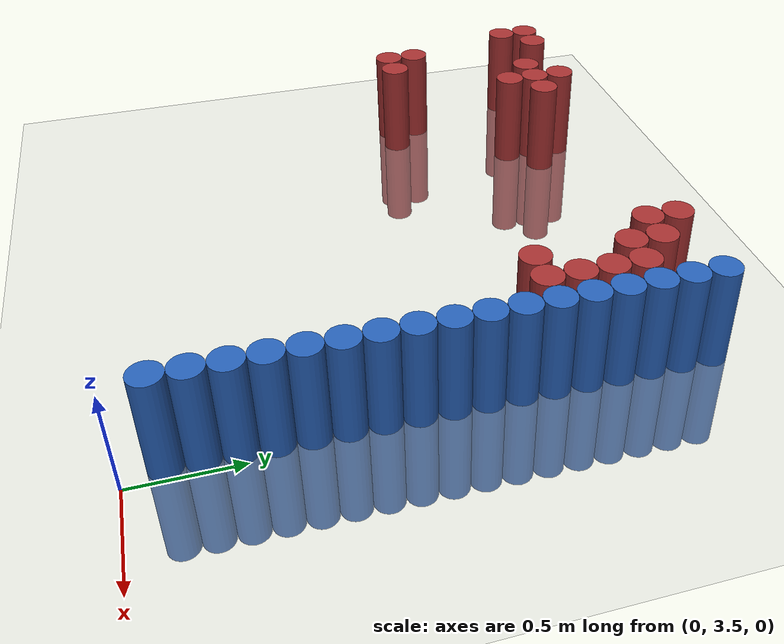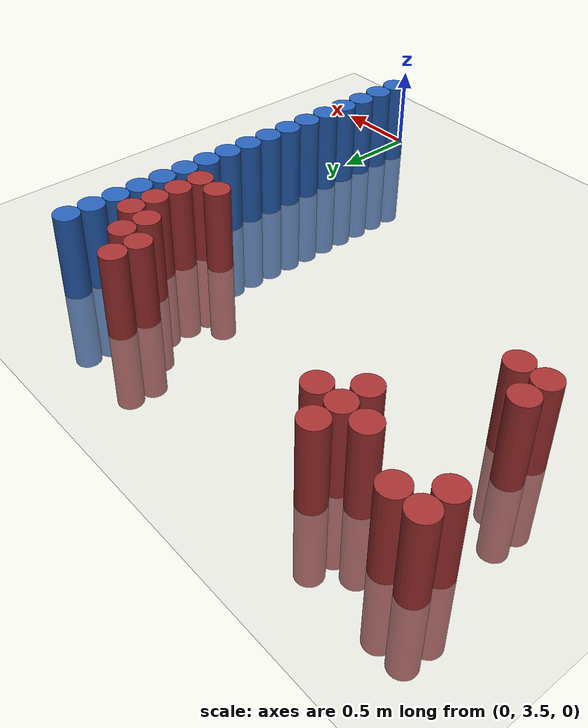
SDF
<sdf version="1.6">
 <world name="default">
  <model name="ground_plane">
   <static>1</static>
   <link name="link">
    <collision name="collision">
     <geometry><plane><normal>0 0 1</normal><size>100 100</size></plane></geometry>
     <surface><friction><ode><mu>100</mu><mu2>50</mu2></ode></friction></surface>
    </collision>
    <visual name="visual">
     <cast_shadows>0</cast_shadows>
     <geometry><plane><normal>0 0 1</normal><size>100 100</size></plane></geometry>
     <material>
      <script><uri>file://media/materials/scripts/gazebo.material</uri><name>Gazebo/Grey</name></script>
     </material>
    </visual>
   </link>
  </model>
  <model name="unit_cylinder_76">
   <static>1</static>
   <pose>-0.075000 3.675000 0.000000 0.000000 0.000000 0.000000</pose>
   <link name="link">
    <inertial>
     <mass>1</mass>
     <inertia><ixx>0.145833</ixx><ixy>0</ixy><ixz>0</ixz><iyy>0.145833</iyy><iyz>0</iyz><izz>0.125</izz></inertia>
    </inertial>
    <collision name="collision">
     <geometry><cylinder><radius>0.075000</radius><length>1</length></cylinder></geometry>
    </collision>
    <visual name="visual">
     <geometry><cylinder><radius>0.075000</radius><length>1</length></cylinder></geometry>
     <material>
      <ambient>0.152000 0.379000 0.720000 1</ambient>
      <diffuse>0.152000 0.379000 0.720000 1</diffuse>
     </material>
     <material>
      <script><name>Gazebo/Grey</name><uri>file://media/materials/scripts/gazebo.material</uri></script>
     </material>
    </visual>
    <sensor name="sensor_contact" type="contact"><contact><collision>collision</collision></contact></sensor>
   </link>
   <plugin filename="gz-sim-touchplugin-system" name="gz::sim::systems::TouchPlugin">
    <target>robot</target>
    <namespace>robot</namespace>
    <time>0.001</time>
    <enabled>true</enabled>
   </plugin>
  </model>
  <model name="unit_cylinder_78">
   <static>1</static>
   <pose>-0.075000 3.825000 0.000000 0.000000 0.000000 0.000000</pose>
   <link name="link">
    <inertial>
     <mass>1</mass>
     <inertia><ixx>0.145833</ixx><ixy>0</ixy><ixz>0</ixz><iyy>0.145833</iyy><iyz>0</iyz><izz>0.125</izz></inertia>
    </inertial>
    <collision name="collision">
     <geometry><cylinder><radius>0.075000</radius><length>1</length></cylinder></geometry>
    </collision>
    <visual name="visual">
     <geometry><cylinder><radius>0.075000</radius><length>1</length></cylinder></geometry>
     <material>
      <ambient>0.152000 0.379000 0.720000 1</ambient>
      <diffuse>0.152000 0.379000 0.720000 1</diffuse>
     </material>
     <material>
      <script><name>Gazebo/Grey</name><uri>file://media/materials/scripts/gazebo.material</uri></script>
     </material>
    </visual>
    <sensor name="sensor_contact" type="contact"><contact><collision>collision</collision></contact></sensor>
   </link>
   <plugin filename="gz-sim-touchplugin-system" name="gz::sim::systems::TouchPlugin">
    <target>robot</target>
    <namespace>robot</namespace>
    <time>0.001</time>
    <enabled>true</enabled>
   </plugin>
  </model>
  <model name="unit_cylinder_80">
   <static>1</static>
   <pose>-0.075000 3.975000 0.000000 0.000000 0.000000 0.000000</pose>
   <link name="link">
    <inertial>
     <mass>1</mass>
     <inertia><ixx>0.145833</ixx><ixy>0</ixy><ixz>0</ixz><iyy>0.145833</iyy><iyz>0</iyz><izz>0.125</izz></inertia>
    </inertial>
    <collision name="collision">
     <geometry><cylinder><radius>0.075000</radius><length>1</length></cylinder></geometry>
    </collision>
    <visual name="visual">
     <geometry><cylinder><radius>0.075000</radius><length>1</length></cylinder></geometry>
     <material>
      <ambient>0.152000 0.379000 0.720000 1</ambient>
      <diffuse>0.152000 0.379000 0.720000 1</diffuse>
     </material>
     <material>
      <script><name>Gazebo/Grey</name><uri>file://media/materials/scripts/gazebo.material</uri></script>
     </material>
    </visual>
    <sensor name="sensor_contact" type="contact"><contact><collision>collision</collision></contact></sensor>
   </link>
   <plugin filename="gz-sim-touchplugin-system" name="gz::sim::systems::TouchPlugin">
    <target>robot</target>
    <namespace>robot</namespace>
    <time>0.001</time>
    <enabled>true</enabled>
   </plugin>
  </model>
  <model name="unit_cylinder_82">
   <static>1</static>
   <pose>-0.075000 4.125000 0.000000 0.000000 0.000000 0.000000</pose>
   <link name="link">
    <inertial>
     <mass>1</mass>
     <inertia><ixx>0.145833</ixx><ixy>0</ixy><ixz>0</ixz><iyy>0.145833</iyy><iyz>0</iyz><izz>0.125</izz></inertia>
    </inertial>
    <collision name="collision">
     <geometry><cylinder><radius>0.075000</radius><length>1</length></cylinder></geometry>
    </collision>
    <visual name="visual">
     <geometry><cylinder><radius>0.075000</radius><length>1</length></cylinder></geometry>
     <material>
      <ambient>0.152000 0.379000 0.720000 1</ambient>
      <diffuse>0.152000 0.379000 0.720000 1</diffuse>
     </material>
     <material>
      <script><name>Gazebo/Grey</name><uri>file://media/materials/scripts/gazebo.material</uri></script>
     </material>
    </visual>
    <sensor name="sensor_contact" type="contact"><contact><collision>collision</collision></contact></sensor>
   </link>
   <plugin filename="gz-sim-touchplugin-system" name="gz::sim::systems::TouchPlugin">
    <target>robot</target>
    <namespace>robot</namespace>
    <time>0.001</time>
    <enabled>true</enabled>
   </plugin>
  </model>
  <model name="unit_cylinder_84">
   <static>1</static>
   <pose>-0.075000 4.275000 0.000000 0.000000 0.000000 0.000000</pose>
   <link name="link">
    <inertial>
     <mass>1</mass>
     <inertia><ixx>0.145833</ixx><ixy>0</ixy><ixz>0</ixz><iyy>0.145833</iyy><iyz>0</iyz><izz>0.125</izz></inertia>
    </inertial>
    <collision name="collision">
     <geometry><cylinder><radius>0.075000</radius><length>1</length></cylinder></geometry>
    </collision>
    <visual name="visual">
     <geometry><cylinder><radius>0.075000</radius><length>1</length></cylinder></geometry>
     <material>
      <ambient>0.152000 0.379000 0.720000 1</ambient>
      <diffuse>0.152000 0.379000 0.720000 1</diffuse>
     </material>
     <material>
      <script><name>Gazebo/Grey</name><uri>file://media/materials/scripts/gazebo.material</uri></script>
     </material>
    </visual>
    <sensor name="sensor_contact" type="contact"><contact><collision>collision</collision></contact></sensor>
   </link>
   <plugin filename="gz-sim-touchplugin-system" name="gz::sim::systems::TouchPlugin">
    <target>robot</target>
    <namespace>robot</namespace>
    <time>0.001</time>
    <enabled>true</enabled>
   </plugin>
  </model>
  <model name="unit_cylinder_86">
   <static>1</static>
   <pose>-0.075000 4.425000 0.000000 0.000000 0.000000 0.000000</pose>
   <link name="link">
    <inertial>
     <mass>1</mass>
     <inertia><ixx>0.145833</ixx><ixy>0</ixy><ixz>0</ixz><iyy>0.145833</iyy><iyz>0</iyz><izz>0.125</izz></inertia>
    </inertial>
    <collision name="collision">
     <geometry><cylinder><radius>0.075000</radius><length>1</length></cylinder></geometry>
    </collision>
    <visual name="visual">
     <geometry><cylinder><radius>0.075000</radius><length>1</length></cylinder></geometry>
     <material>
      <ambient>0.152000 0.379000 0.720000 1</ambient>
      <diffuse>0.152000 0.379000 0.720000 1</diffuse>
     </material>
     <material>
      <script><name>Gazebo/Grey</name><uri>file://media/materials/scripts/gazebo.material</uri></script>
     </material>
    </visual>
    <sensor name="sensor_contact" type="contact"><contact><collision>collision</collision></contact></sensor>
   </link>
   <plugin filename="gz-sim-touchplugin-system" name="gz::sim::systems::TouchPlugin">
    <target>robot</target>
    <namespace>robot</namespace>
    <time>0.001</time>
    <enabled>true</enabled>
   </plugin>
  </model>
  <model name="unit_cylinder_88">
   <static>1</static>
   <pose>-0.075000 4.575000 0.000000 0.000000 0.000000 0.000000</pose>
   <link name="link">
    <inertial>
     <mass>1</mass>
     <inertia><ixx>0.145833</ixx><ixy>0</ixy><ixz>0</ixz><iyy>0.145833</iyy><iyz>0</iyz><izz>0.125</izz></inertia>
    </inertial>
    <collision name="collision">
     <geometry><cylinder><radius>0.075000</radius><length>1</length></cylinder></geometry>
    </collision>
    <visual name="visual">
     <geometry><cylinder><radius>0.075000</radius><length>1</length></cylinder></geometry>
     <material>
      <ambient>0.152000 0.379000 0.720000 1</ambient>
      <diffuse>0.152000 0.379000 0.720000 1</diffuse>
     </material>
     <material>
      <script><name>Gazebo/Grey</name><uri>file://media/materials/scripts/gazebo.material</uri></script>
     </material>
    </visual>
    <sensor name="sensor_contact" type="contact"><contact><collision>collision</collision></contact></sensor>
   </link>
   <plugin filename="gz-sim-touchplugin-system" name="gz::sim::systems::TouchPlugin">
    <target>robot</target>
    <namespace>robot</namespace>
    <time>0.001</time>
    <enabled>true</enabled>
   </plugin>
  </model>
  <model name="unit_cylinder_90">
   <static>1</static>
   <pose>-0.075000 4.725000 0.000000 0.000000 0.000000 0.000000</pose>
   <link name="link">
    <inertial>
     <mass>1</mass>
     <inertia><ixx>0.145833</ixx><ixy>0</ixy><ixz>0</ixz><iyy>0.145833</iyy><iyz>0</iyz><izz>0.125</izz></inertia>
    </inertial>
    <collision name="collision">
     <geometry><cylinder><radius>0.075000</radius><length>1</length></cylinder></geometry>
    </collision>
    <visual name="visual">
     <geometry><cylinder><radius>0.075000</radius><length>1</length></cylinder></geometry>
     <material>
      <ambient>0.152000 0.379000 0.720000 1</ambient>
      <diffuse>0.152000 0.379000 0.720000 1</diffuse>
     </material>
     <material>
      <script><name>Gazebo/Grey</name><uri>file://media/materials/scripts/gazebo.material</uri></script>
     </material>
    </visual>
    <sensor name="sensor_contact" type="contact"><contact><collision>collision</collision></contact></sensor>
   </link>
   <plugin filename="gz-sim-touchplugin-system" name="gz::sim::systems::TouchPlugin">
    <target>robot</target>
    <namespace>robot</namespace>
    <time>0.001</time>
    <enabled>true</enabled>
   </plugin>
  </model>
  <model name="unit_cylinder_92">
   <static>1</static>
   <pose>-0.075000 4.875000 0.000000 0.000000 0.000000 0.000000</pose>
   <link name="link">
    <inertial>
     <mass>1</mass>
     <inertia><ixx>0.145833</ixx><ixy>0</ixy><ixz>0</ixz><iyy>0.145833</iyy><iyz>0</iyz><izz>0.125</izz></inertia>
    </inertial>
    <collision name="collision">
     <geometry><cylinder><radius>0.075000</radius><length>1</length></cylinder></geometry>
    </collision>
    <visual name="visual">
     <geometry><cylinder><radius>0.075000</radius><length>1</length></cylinder></geometry>
     <material>
      <ambient>0.152000 0.379000 0.720000 1</ambient>
      <diffuse>0.152000 0.379000 0.720000 1</diffuse>
     </material>
     <material>
      <script><name>Gazebo/Grey</name><uri>file://media/materials/scripts/gazebo.material</uri></script>
     </material>
    </visual>
    <sensor name="sensor_contact" type="contact"><contact><collision>collision</collision></contact></sensor>
   </link>
   <plugin filename="gz-sim-touchplugin-system" name="gz::sim::systems::TouchPlugin">
    <target>robot</target>
    <namespace>robot</namespace>
    <time>0.001</time>
    <enabled>true</enabled>
   </plugin>
  </model>
  <model name="unit_cylinder_94">
   <static>1</static>
   <pose>-0.075000 5.025000 0.000000 0.000000 0.000000 0.000000</pose>
   <link name="link">
    <inertial>
     <mass>1</mass>
     <inertia><ixx>0.145833</ixx><ixy>0</ixy><ixz>0</ixz><iyy>0.145833</iyy><iyz>0</iyz><izz>0.125</izz></inertia>
    </inertial>
    <collision name="collision">
     <geometry><cylinder><radius>0.075000</radius><length>1</length></cylinder></geometry>
    </collision>
    <visual name="visual">
     <geometry><cylinder><radius>0.075000</radius><length>1</length></cylinder></geometry>
     <material>
      <ambient>0.152000 0.379000 0.720000 1</ambient>
      <diffuse>0.152000 0.379000 0.720000 1</diffuse>
     </material>
     <material>
      <script><name>Gazebo/Grey</name><uri>file://media/materials/scripts/gazebo.material</uri></script>
     </material>
    </visual>
    <sensor name="sensor_contact" type="contact"><contact><collision>collision</collision></contact></sensor>
   </link>
   <plugin filename="gz-sim-touchplugin-system" name="gz::sim::systems::TouchPlugin">
    <target>robot</target>
    <namespace>robot</namespace>
    <time>0.001</time>
    <enabled>true</enabled>
   </plugin>
  </model>
  <model name="unit_cylinder_207">
   <static>1</static>
   <pose>-2.625000 5.925000 0.000000 0.000000 0.000000 0.000000</pose>
   <link name="link">
    <inertial>
     <mass>1</mass>
     <inertia><ixx>0.145833</ixx><ixy>0</ixy><ixz>0</ixz><iyy>0.145833</iyy><iyz>0</iyz><izz>0.125</izz></inertia>
    </inertial>
    <collision name="collision">
     <geometry><cylinder><radius>0.075000</radius><length>1</length></cylinder></geometry>
    </collision>
    <visual name="visual">
     <geometry><cylinder><radius>0.075000</radius><length>1</length></cylinder></geometry>
     <material>
      <ambient>0.648000 0.192000 0.192000 1</ambient>
      <diffuse>0.648000 0.192000 0.192000 1</diffuse>
     </material>
     <material>
      <script><name>Gazebo/Grey</name><uri>file://media/materials/scripts/gazebo.material</uri></script>
     </material>
    </visual>
    <sensor name="sensor_contact" type="contact"><contact><collision>collision</collision></contact></sensor>
   </link>
   <plugin filename="gz-sim-touchplugin-system" name="gz::sim::systems::TouchPlugin">
    <target>robot</target>
    <namespace>robot</namespace>
    <time>0.001</time>
    <enabled>true</enabled>
   </plugin>
  </model>
  <model name="unit_cylinder_208">
   <static>1</static>
   <pose>-2.625000 6.075000 0.000000 0.000000 0.000000 0.000000</pose>
   <link name="link">
    <inertial>
     <mass>1</mass>
     <inertia><ixx>0.145833</ixx><ixy>0</ixy><ixz>0</ixz><iyy>0.145833</iyy><iyz>0</iyz><izz>0.125</izz></inertia>
    </inertial>
    <collision name="collision">
     <geometry><cylinder><radius>0.075000</radius><length>1</length></cylinder></geometry>
    </collision>
    <visual name="visual">
     <geometry><cylinder><radius>0.075000</radius><length>1</length></cylinder></geometry>
     <material>
      <ambient>0.648000 0.192000 0.192000 1</ambient>
      <diffuse>0.648000 0.192000 0.192000 1</diffuse>
     </material>
     <material>
      <script><name>Gazebo/Grey</name><uri>file://media/materials/scripts/gazebo.material</uri></script>
     </material>
    </visual>
    <sensor name="sensor_contact" type="contact"><contact><collision>collision</collision></contact></sensor>
   </link>
   <plugin filename="gz-sim-touchplugin-system" name="gz::sim::systems::TouchPlugin">
    <target>robot</target>
    <namespace>robot</namespace>
    <time>0.001</time>
    <enabled>true</enabled>
   </plugin>
  </model>
  <model name="unit_cylinder_216">
   <static>1</static>
   <pose>-2.475000 5.175000 0.000000 0.000000 0.000000 0.000000</pose>
   <link name="link">
    <inertial>
     <mass>1</mass>
     <inertia><ixx>0.145833</ixx><ixy>0</ixy><ixz>0</ixz><iyy>0.145833</iyy><iyz>0</iyz><izz>0.125</izz></inertia>
    </inertial>
    <collision name="collision">
     <geometry><cylinder><radius>0.075000</radius><length>1</length></cylinder></geometry>
    </collision>
    <visual name="visual">
     <geometry><cylinder><radius>0.075000</radius><length>1</length></cylinder></geometry>
     <material>
      <ambient>0.648000 0.192000 0.192000 1</ambient>
      <diffuse>0.648000 0.192000 0.192000 1</diffuse>
     </material>
     <material>
      <script><name>Gazebo/Grey</name><uri>file://media/materials/scripts/gazebo.material</uri></script>
     </material>
    </visual>
    <sensor name="sensor_contact" type="contact"><contact><collision>collision</collision></contact></sensor>
   </link>
   <plugin filename="gz-sim-touchplugin-system" name="gz::sim::systems::TouchPlugin">
    <target>robot</target>
    <namespace>robot</namespace>
    <time>0.001</time>
    <enabled>true</enabled>
   </plugin>
  </model>
  <model name="unit_cylinder_217">
   <static>1</static>
   <pose>-2.475000 5.325000 0.000000 0.000000 0.000000 0.000000</pose>
   <link name="link">
    <inertial>
     <mass>1</mass>
     <inertia><ixx>0.145833</ixx><ixy>0</ixy><ixz>0</ixz><iyy>0.145833</iyy><iyz>0</iyz><izz>0.125</izz></inertia>
    </inertial>
    <collision name="collision">
     <geometry><cylinder><radius>0.075000</radius><length>1</length></cylinder></geometry>
    </collision>
    <visual name="visual">
     <geometry><cylinder><radius>0.075000</radius><length>1</length></cylinder></geometry>
     <material>
      <ambient>0.648000 0.192000 0.192000 1</ambient>
      <diffuse>0.648000 0.192000 0.192000 1</diffuse>
     </material>
     <material>
      <script><name>Gazebo/Grey</name><uri>file://media/materials/scripts/gazebo.material</uri></script>
     </material>
    </visual>
    <sensor name="sensor_contact" type="contact"><contact><collision>collision</collision></contact></sensor>
   </link>
   <plugin filename="gz-sim-touchplugin-system" name="gz::sim::systems::TouchPlugin">
    <target>robot</target>
    <namespace>robot</namespace>
    <time>0.001</time>
    <enabled>true</enabled>
   </plugin>
  </model>
  <model name="unit_cylinder_218">
   <static>1</static>
   <pose>-2.475000 6.075000 0.000000 0.000000 0.000000 0.000000</pose>
   <link name="link">
    <inertial>
     <mass>1</mass>
     <inertia><ixx>0.145833</ixx><ixy>0</ixy><ixz>0</ixz><iyy>0.145833</iyy><iyz>0</iyz><izz>0.125</izz></inertia>
    </inertial>
    <collision name="collision">
     <geometry><cylinder><radius>0.075000</radius><length>1</length></cylinder></geometry>
    </collision>
    <visual name="visual">
     <geometry><cylinder><radius>0.075000</radius><length>1</length></cylinder></geometry>
     <material>
      <ambient>0.648000 0.192000 0.192000 1</ambient>
      <diffuse>0.648000 0.192000 0.192000 1</diffuse>
     </material>
     <material>
      <script><name>Gazebo/Grey</name><uri>file://media/materials/scripts/gazebo.material</uri></script>
     </material>
    </visual>
    <sensor name="sensor_contact" type="contact"><contact><collision>collision</collision></contact></sensor>
   </link>
   <plugin filename="gz-sim-touchplugin-system" name="gz::sim::systems::TouchPlugin">
    <target>robot</target>
    <namespace>robot</namespace>
    <time>0.001</time>
    <enabled>true</enabled>
   </plugin>
  </model>
  <model name="unit_cylinder_234">
   <static>1</static>
   <pose>-2.325000 5.175000 0.000000 0.000000 0.000000 0.000000</pose>
   <link name="link">
    <inertial>
     <mass>1</mass>
     <inertia><ixx>0.145833</ixx><ixy>0</ixy><ixz>0</ixz><iyy>0.145833</iyy><iyz>0</iyz><izz>0.125</izz></inertia>
    </inertial>
    <collision name="collision">
     <geometry><cylinder><radius>0.075000</radius><length>1</length></cylinder></geometry>
    </collision>
    <visual name="visual">
     <geometry><cylinder><radius>0.075000</radius><length>1</length></cylinder></geometry>
     <material>
      <ambient>0.648000 0.192000 0.192000 1</ambient>
      <diffuse>0.648000 0.192000 0.192000 1</diffuse>
     </material>
     <material>
      <script><name>Gazebo/Grey</name><uri>file://media/materials/scripts/gazebo.material</uri></script>
     </material>
    </visual>
    <sensor name="sensor_contact" type="contact"><contact><collision>collision</collision></contact></sensor>
   </link>
   <plugin filename="gz-sim-touchplugin-system" name="gz::sim::systems::TouchPlugin">
    <target>robot</target>
    <namespace>robot</namespace>
    <time>0.001</time>
    <enabled>true</enabled>
   </plugin>
  </model>
  <model name="unit_cylinder_241">
   <static>1</static>
   <pose>-2.175000 5.925000 0.000000 0.000000 0.000000 0.000000</pose>
   <link name="link">
    <inertial>
     <mass>1</mass>
     <inertia><ixx>0.145833</ixx><ixy>0</ixy><ixz>0</ixz><iyy>0.145833</iyy><iyz>0</iyz><izz>0.125</izz></inertia>
    </inertial>
    <collision name="collision">
     <geometry><cylinder><radius>0.075000</radius><length>1</length></cylinder></geometry>
    </collision>
    <visual name="visual">
     <geometry><cylinder><radius>0.075000</radius><length>1</length></cylinder></geometry>
     <material>
      <ambient>0.648000 0.192000 0.192000 1</ambient>
      <diffuse>0.648000 0.192000 0.192000 1</diffuse>
     </material>
     <material>
      <script><name>Gazebo/Grey</name><uri>file://media/materials/scripts/gazebo.material</uri></script>
     </material>
    </visual>
    <sensor name="sensor_contact" type="contact"><contact><collision>collision</collision></contact></sensor>
   </link>
   <plugin filename="gz-sim-touchplugin-system" name="gz::sim::systems::TouchPlugin">
    <target>robot</target>
    <namespace>robot</namespace>
    <time>0.001</time>
    <enabled>true</enabled>
   </plugin>
  </model>
  <model name="unit_cylinder_245">
   <static>1</static>
   <pose>-2.025000 5.775000 0.000000 0.000000 0.000000 0.000000</pose>
   <link name="link">
    <inertial>
     <mass>1</mass>
     <inertia><ixx>0.145833</ixx><ixy>0</ixy><ixz>0</ixz><iyy>0.145833</iyy><iyz>0</iyz><izz>0.125</izz></inertia>
    </inertial>
    <collision name="collision">
     <geometry><cylinder><radius>0.075000</radius><length>1</length></cylinder></geometry>
    </collision>
    <visual name="visual">
     <geometry><cylinder><radius>0.075000</radius><length>1</length></cylinder></geometry>
     <material>
      <ambient>0.648000 0.192000 0.192000 1</ambient>
      <diffuse>0.648000 0.192000 0.192000 1</diffuse>
     </material>
     <material>
      <script><name>Gazebo/Grey</name><uri>file://media/materials/scripts/gazebo.material</uri></script>
     </material>
    </visual>
    <sensor name="sensor_contact" type="contact"><contact><collision>collision</collision></contact></sensor>
   </link>
   <plugin filename="gz-sim-touchplugin-system" name="gz::sim::systems::TouchPlugin">
    <target>robot</target>
    <namespace>robot</namespace>
    <time>0.001</time>
    <enabled>true</enabled>
   </plugin>
  </model>
  <model name="unit_cylinder_246">
   <static>1</static>
   <pose>-2.025000 5.925000 0.000000 0.000000 0.000000 0.000000</pose>
   <link name="link">
    <inertial>
     <mass>1</mass>
     <inertia><ixx>0.145833</ixx><ixy>0</ixy><ixz>0</ixz><iyy>0.145833</iyy><iyz>0</iyz><izz>0.125</izz></inertia>
    </inertial>
    <collision name="collision">
     <geometry><cylinder><radius>0.075000</radius><length>1</length></cylinder></geometry>
    </collision>
    <visual name="visual">
     <geometry><cylinder><radius>0.075000</radius><length>1</length></cylinder></geometry>
     <material>
      <ambient>0.648000 0.192000 0.192000 1</ambient>
      <diffuse>0.648000 0.192000 0.192000 1</diffuse>
     </material>
     <material>
      <script><name>Gazebo/Grey</name><uri>file://media/materials/scripts/gazebo.material</uri></script>
     </material>
    </visual>
    <sensor name="sensor_contact" type="contact"><contact><collision>collision</collision></contact></sensor>
   </link>
   <plugin filename="gz-sim-touchplugin-system" name="gz::sim::systems::TouchPlugin">
    <target>robot</target>
    <namespace>robot</namespace>
    <time>0.001</time>
    <enabled>true</enabled>
   </plugin>
  </model>
  <model name="unit_cylinder_247">
   <static>1</static>
   <pose>-2.025000 6.075000 0.000000 0.000000 0.000000 0.000000</pose>
   <link name="link">
    <inertial>
     <mass>1</mass>
     <inertia><ixx>0.145833</ixx><ixy>0</ixy><ixz>0</ixz><iyy>0.145833</iyy><iyz>0</iyz><izz>0.125</izz></inertia>
    </inertial>
    <collision name="collision">
     <geometry><cylinder><radius>0.075000</radius><length>1</length></cylinder></geometry>
    </collision>
    <visual name="visual">
     <geometry><cylinder><radius>0.075000</radius><length>1</length></cylinder></geometry>
     <material>
      <ambient>0.648000 0.192000 0.192000 1</ambient>
      <diffuse>0.648000 0.192000 0.192000 1</diffuse>
     </material>
     <material>
      <script><name>Gazebo/Grey</name><uri>file://media/materials/scripts/gazebo.material</uri></script>
     </material>
    </visual>
    <sensor name="sensor_contact" type="contact"><contact><collision>collision</collision></contact></sensor>
   </link>
   <plugin filename="gz-sim-touchplugin-system" name="gz::sim::systems::TouchPlugin">
    <target>robot</target>
    <namespace>robot</namespace>
    <time>0.001</time>
    <enabled>true</enabled>
   </plugin>
  </model>
  <model name="unit_cylinder_250">
   <static>1</static>
   <pose>-1.875000 5.925000 0.000000 0.000000 0.000000 0.000000</pose>
   <link name="link">
    <inertial>
     <mass>1</mass>
     <inertia><ixx>0.145833</ixx><ixy>0</ixy><ixz>0</ixz><iyy>0.145833</iyy><iyz>0</iyz><izz>0.125</izz></inertia>
    </inertial>
    <collision name="collision">
     <geometry><cylinder><radius>0.075000</radius><length>1</length></cylinder></geometry>
    </collision>
    <visual name="visual">
     <geometry><cylinder><radius>0.075000</radius><length>1</length></cylinder></geometry>
     <material>
      <ambient>0.648000 0.192000 0.192000 1</ambient>
      <diffuse>0.648000 0.192000 0.192000 1</diffuse>
     </material>
     <material>
      <script><name>Gazebo/Grey</name><uri>file://media/materials/scripts/gazebo.material</uri></script>
     </material>
    </visual>
    <sensor name="sensor_contact" type="contact"><contact><collision>collision</collision></contact></sensor>
   </link>
   <plugin filename="gz-sim-touchplugin-system" name="gz::sim::systems::TouchPlugin">
    <target>robot</target>
    <namespace>robot</namespace>
    <time>0.001</time>
    <enabled>true</enabled>
   </plugin>
  </model>
  <model name="unit_cylinder_270">
   <static>1</static>
   <pose>-0.525000 5.925000 0.000000 0.000000 0.000000 0.000000</pose>
   <link name="link">
    <inertial>
     <mass>1</mass>
     <inertia><ixx>0.145833</ixx><ixy>0</ixy><ixz>0</ixz><iyy>0.145833</iyy><iyz>0</iyz><izz>0.125</izz></inertia>
    </inertial>
    <collision name="collision">
     <geometry><cylinder><radius>0.075000</radius><length>1</length></cylinder></geometry>
    </collision>
    <visual name="visual">
     <geometry><cylinder><radius>0.075000</radius><length>1</length></cylinder></geometry>
     <material>
      <ambient>0.648000 0.192000 0.192000 1</ambient>
      <diffuse>0.648000 0.192000 0.192000 1</diffuse>
     </material>
     <material>
      <script><name>Gazebo/Grey</name><uri>file://media/materials/scripts/gazebo.material</uri></script>
     </material>
    </visual>
    <sensor name="sensor_contact" type="contact"><contact><collision>collision</collision></contact></sensor>
   </link>
   <plugin filename="gz-sim-touchplugin-system" name="gz::sim::systems::TouchPlugin">
    <target>robot</target>
    <namespace>robot</namespace>
    <time>0.001</time>
    <enabled>true</enabled>
   </plugin>
  </model>
  <model name="unit_cylinder_271">
   <static>1</static>
   <pose>-0.525000 6.075000 0.000000 0.000000 0.000000 0.000000</pose>
   <link name="link">
    <inertial>
     <mass>1</mass>
     <inertia><ixx>0.145833</ixx><ixy>0</ixy><ixz>0</ixz><iyy>0.145833</iyy><iyz>0</iyz><izz>0.125</izz></inertia>
    </inertial>
    <collision name="collision">
     <geometry><cylinder><radius>0.075000</radius><length>1</length></cylinder></geometry>
    </collision>
    <visual name="visual">
     <geometry><cylinder><radius>0.075000</radius><length>1</length></cylinder></geometry>
     <material>
      <ambient>0.648000 0.192000 0.192000 1</ambient>
      <diffuse>0.648000 0.192000 0.192000 1</diffuse>
     </material>
     <material>
      <script><name>Gazebo/Grey</name><uri>file://media/materials/scripts/gazebo.material</uri></script>
     </material>
    </visual>
    <sensor name="sensor_contact" type="contact"><contact><collision>collision</collision></contact></sensor>
   </link>
   <plugin filename="gz-sim-touchplugin-system" name="gz::sim::systems::TouchPlugin">
    <target>robot</target>
    <namespace>robot</namespace>
    <time>0.001</time>
    <enabled>true</enabled>
   </plugin>
  </model>
  <model name="unit_cylinder_276">
   <static>1</static>
   <pose>-0.375000 5.325000 0.000000 0.000000 0.000000 0.000000</pose>
   <link name="link">
    <inertial>
     <mass>1</mass>
     <inertia><ixx>0.145833</ixx><ixy>0</ixy><ixz>0</ixz><iyy>0.145833</iyy><iyz>0</iyz><izz>0.125</izz></inertia>
    </inertial>
    <collision name="collision">
     <geometry><cylinder><radius>0.075000</radius><length>1</length></cylinder></geometry>
    </collision>
    <visual name="visual">
     <geometry><cylinder><radius>0.075000</radius><length>1</length></cylinder></geometry>
     <material>
      <ambient>0.648000 0.192000 0.192000 1</ambient>
      <diffuse>0.648000 0.192000 0.192000 1</diffuse>
     </material>
     <material>
      <script><name>Gazebo/Grey</name><uri>file://media/materials/scripts/gazebo.material</uri></script>
     </material>
    </visual>
    <sensor name="sensor_contact" type="contact"><contact><collision>collision</collision></contact></sensor>
   </link>
   <plugin filename="gz-sim-touchplugin-system" name="gz::sim::systems::TouchPlugin">
    <target>robot</target>
    <namespace>robot</namespace>
    <time>0.001</time>
    <enabled>true</enabled>
   </plugin>
  </model>
  <model name="unit_cylinder_277">
   <static>1</static>
   <pose>-0.375000 5.775000 0.000000 0.000000 0.000000 0.000000</pose>
   <link name="link">
    <inertial>
     <mass>1</mass>
     <inertia><ixx>0.145833</ixx><ixy>0</ixy><ixz>0</ixz><iyy>0.145833</iyy><iyz>0</iyz><izz>0.125</izz></inertia>
    </inertial>
    <collision name="collision">
     <geometry><cylinder><radius>0.075000</radius><length>1</length></cylinder></geometry>
    </collision>
    <visual name="visual">
     <geometry><cylinder><radius>0.075000</radius><length>1</length></cylinder></geometry>
     <material>
      <ambient>0.648000 0.192000 0.192000 1</ambient>
      <diffuse>0.648000 0.192000 0.192000 1</diffuse>
     </material>
     <material>
      <script><name>Gazebo/Grey</name><uri>file://media/materials/scripts/gazebo.material</uri></script>
     </material>
    </visual>
    <sensor name="sensor_contact" type="contact"><contact><collision>collision</collision></contact></sensor>
   </link>
   <plugin filename="gz-sim-touchplugin-system" name="gz::sim::systems::TouchPlugin">
    <target>robot</target>
    <namespace>robot</namespace>
    <time>0.001</time>
    <enabled>true</enabled>
   </plugin>
  </model>
  <model name="unit_cylinder_278">
   <static>1</static>
   <pose>-0.375000 5.925000 0.000000 0.000000 0.000000 0.000000</pose>
   <link name="link">
    <inertial>
     <mass>1</mass>
     <inertia><ixx>0.145833</ixx><ixy>0</ixy><ixz>0</ixz><iyy>0.145833</iyy><iyz>0</iyz><izz>0.125</izz></inertia>
    </inertial>
    <collision name="collision">
     <geometry><cylinder><radius>0.075000</radius><length>1</length></cylinder></geometry>
    </collision>
    <visual name="visual">
     <geometry><cylinder><radius>0.075000</radius><length>1</length></cylinder></geometry>
     <material>
      <ambient>0.648000 0.192000 0.192000 1</ambient>
      <diffuse>0.648000 0.192000 0.192000 1</diffuse>
     </material>
     <material>
      <script><name>Gazebo/Grey</name><uri>file://media/materials/scripts/gazebo.material</uri></script>
     </material>
    </visual>
    <sensor name="sensor_contact" type="contact"><contact><collision>collision</collision></contact></sensor>
   </link>
   <plugin filename="gz-sim-touchplugin-system" name="gz::sim::systems::TouchPlugin">
    <target>robot</target>
    <namespace>robot</namespace>
    <time>0.001</time>
    <enabled>true</enabled>
   </plugin>
  </model>
  <model name="unit_cylinder_287">
   <static>1</static>
   <pose>-0.225000 5.325000 0.000000 0.000000 0.000000 0.000000</pose>
   <link name="link">
    <inertial>
     <mass>1</mass>
     <inertia><ixx>0.145833</ixx><ixy>0</ixy><ixz>0</ixz><iyy>0.145833</iyy><iyz>0</iyz><izz>0.125</izz></inertia>
    </inertial>
    <collision name="collision">
     <geometry><cylinder><radius>0.075000</radius><length>1</length></cylinder></geometry>
    </collision>
    <visual name="visual">
     <geometry><cylinder><radius>0.075000</radius><length>1</length></cylinder></geometry>
     <material>
      <ambient>0.648000 0.192000 0.192000 1</ambient>
      <diffuse>0.648000 0.192000 0.192000 1</diffuse>
     </material>
     <material>
      <script><name>Gazebo/Grey</name><uri>file://media/materials/scripts/gazebo.material</uri></script>
     </material>
    </visual>
    <sensor name="sensor_contact" type="contact"><contact><collision>collision</collision></contact></sensor>
   </link>
   <plugin filename="gz-sim-touchplugin-system" name="gz::sim::systems::TouchPlugin">
    <target>robot</target>
    <namespace>robot</namespace>
    <time>0.001</time>
    <enabled>true</enabled>
   </plugin>
  </model>
  <model name="unit_cylinder_288">
   <static>1</static>
   <pose>-0.225000 5.475000 0.000000 0.000000 0.000000 0.000000</pose>
   <link name="link">
    <inertial>
     <mass>1</mass>
     <inertia><ixx>0.145833</ixx><ixy>0</ixy><ixz>0</ixz><iyy>0.145833</iyy><iyz>0</iyz><izz>0.125</izz></inertia>
    </inertial>
    <collision name="collision">
     <geometry><cylinder><radius>0.075000</radius><length>1</length></cylinder></geometry>
    </collision>
    <visual name="visual">
     <geometry><cylinder><radius>0.075000</radius><length>1</length></cylinder></geometry>
     <material>
      <ambient>0.648000 0.192000 0.192000 1</ambient>
      <diffuse>0.648000 0.192000 0.192000 1</diffuse>
     </material>
     <material>
      <script><name>Gazebo/Grey</name><uri>file://media/materials/scripts/gazebo.material</uri></script>
     </material>
    </visual>
    <sensor name="sensor_contact" type="contact"><contact><collision>collision</collision></contact></sensor>
   </link>
   <plugin filename="gz-sim-touchplugin-system" name="gz::sim::systems::TouchPlugin">
    <target>robot</target>
    <namespace>robot</namespace>
    <time>0.001</time>
    <enabled>true</enabled>
   </plugin>
  </model>
  <model name="unit_cylinder_289">
   <static>1</static>
   <pose>-0.225000 5.625000 0.000000 0.000000 0.000000 0.000000</pose>
   <link name="link">
    <inertial>
     <mass>1</mass>
     <inertia><ixx>0.145833</ixx><ixy>0</ixy><ixz>0</ixz><iyy>0.145833</iyy><iyz>0</iyz><izz>0.125</izz></inertia>
    </inertial>
    <collision name="collision">
     <geometry><cylinder><radius>0.075000</radius><length>1</length></cylinder></geometry>
    </collision>
    <visual name="visual">
     <geometry><cylinder><radius>0.075000</radius><length>1</length></cylinder></geometry>
     <material>
      <ambient>0.648000 0.192000 0.192000 1</ambient>
      <diffuse>0.648000 0.192000 0.192000 1</diffuse>
     </material>
     <material>
      <script><name>Gazebo/Grey</name><uri>file://media/materials/scripts/gazebo.material</uri></script>
     </material>
    </visual>
    <sensor name="sensor_contact" type="contact"><contact><collision>collision</collision></contact></sensor>
   </link>
   <plugin filename="gz-sim-touchplugin-system" name="gz::sim::systems::TouchPlugin">
    <target>robot</target>
    <namespace>robot</namespace>
    <time>0.001</time>
    <enabled>true</enabled>
   </plugin>
  </model>
  <model name="unit_cylinder_290">
   <static>1</static>
   <pose>-0.225000 5.775000 0.000000 0.000000 0.000000 0.000000</pose>
   <link name="link">
    <inertial>
     <mass>1</mass>
     <inertia><ixx>0.145833</ixx><ixy>0</ixy><ixz>0</ixz><iyy>0.145833</iyy><iyz>0</iyz><izz>0.125</izz></inertia>
    </inertial>
    <collision name="collision">
     <geometry><cylinder><radius>0.075000</radius><length>1</length></cylinder></geometry>
    </collision>
    <visual name="visual">
     <geometry><cylinder><radius>0.075000</radius><length>1</length></cylinder></geometry>
     <material>
      <ambient>0.648000 0.192000 0.192000 1</ambient>
      <diffuse>0.648000 0.192000 0.192000 1</diffuse>
     </material>
     <material>
      <script><name>Gazebo/Grey</name><uri>file://media/materials/scripts/gazebo.material</uri></script>
     </material>
    </visual>
    <sensor name="sensor_contact" type="contact"><contact><collision>collision</collision></contact></sensor>
   </link>
   <plugin filename="gz-sim-touchplugin-system" name="gz::sim::systems::TouchPlugin">
    <target>robot</target>
    <namespace>robot</namespace>
    <time>0.001</time>
    <enabled>true</enabled>
   </plugin>
  </model>
  <model name="unit_cylinder_306">
   <static>1</static>
   <pose>-0.075000 5.175000 0.000000 0.000000 0.000000 0.000000</pose>
   <link name="link">
    <inertial>
     <mass>1</mass>
     <inertia><ixx>0.145833</ixx><ixy>0</ixy><ixz>0</ixz><iyy>0.145833</iyy><iyz>0</iyz><izz>0.125</izz></inertia>
    </inertial>
    <collision name="collision">
     <geometry><cylinder><radius>0.075000</radius><length>1</length></cylinder></geometry>
    </collision>
    <visual name="visual">
     <geometry><cylinder><radius>0.075000</radius><length>1</length></cylinder></geometry>
     <material>
      <ambient>0.152000 0.379000 0.720000 1</ambient>
      <diffuse>0.152000 0.379000 0.720000 1</diffuse>
     </material>
     <material>
      <script><name>Gazebo/Grey</name><uri>file://media/materials/scripts/gazebo.material</uri></script>
     </material>
    </visual>
    <sensor name="sensor_contact" type="contact"><contact><collision>collision</collision></contact></sensor>
   </link>
   <plugin filename="gz-sim-touchplugin-system" name="gz::sim::systems::TouchPlugin">
    <target>robot</target>
    <namespace>robot</namespace>
    <time>0.001</time>
    <enabled>true</enabled>
   </plugin>
  </model>
  <model name="unit_cylinder_307">
   <static>1</static>
   <pose>-0.075000 5.325000 0.000000 0.000000 0.000000 0.000000</pose>
   <link name="link">
    <inertial>
     <mass>1</mass>
     <inertia><ixx>0.145833</ixx><ixy>0</ixy><ixz>0</ixz><iyy>0.145833</iyy><iyz>0</iyz><izz>0.125</izz></inertia>
    </inertial>
    <collision name="collision">
     <geometry><cylinder><radius>0.075000</radius><length>1</length></cylinder></geometry>
    </collision>
    <visual name="visual">
     <geometry><cylinder><radius>0.075000</radius><length>1</length></cylinder></geometry>
     <material>
      <ambient>0.152000 0.379000 0.720000 1</ambient>
      <diffuse>0.152000 0.379000 0.720000 1</diffuse>
     </material>
     <material>
      <script><name>Gazebo/Grey</name><uri>file://media/materials/scripts/gazebo.material</uri></script>
     </material>
    </visual>
    <sensor name="sensor_contact" type="contact"><contact><collision>collision</collision></contact></sensor>
   </link>
   <plugin filename="gz-sim-touchplugin-system" name="gz::sim::systems::TouchPlugin">
    <target>robot</target>
    <namespace>robot</namespace>
    <time>0.001</time>
    <enabled>true</enabled>
   </plugin>
  </model>
  <model name="unit_cylinder_308">
   <static>1</static>
   <pose>-0.075000 5.475000 0.000000 0.000000 0.000000 0.000000</pose>
   <link name="link">
    <inertial>
     <mass>1</mass>
     <inertia><ixx>0.145833</ixx><ixy>0</ixy><ixz>0</ixz><iyy>0.145833</iyy><iyz>0</iyz><izz>0.125</izz></inertia>
    </inertial>
    <collision name="collision">
     <geometry><cylinder><radius>0.075000</radius><length>1</length></cylinder></geometry>
    </collision>
    <visual name="visual">
     <geometry><cylinder><radius>0.075000</radius><length>1</length></cylinder></geometry>
     <material>
      <ambient>0.152000 0.379000 0.720000 1</ambient>
      <diffuse>0.152000 0.379000 0.720000 1</diffuse>
     </material>
     <material>
      <script><name>Gazebo/Grey</name><uri>file://media/materials/scripts/gazebo.material</uri></script>
     </material>
    </visual>
    <sensor name="sensor_contact" type="contact"><contact><collision>collision</collision></contact></sensor>
   </link>
   <plugin filename="gz-sim-touchplugin-system" name="gz::sim::systems::TouchPlugin">
    <target>robot</target>
    <namespace>robot</namespace>
    <time>0.001</time>
    <enabled>true</enabled>
   </plugin>
  </model>
  <model name="unit_cylinder_309">
   <static>1</static>
   <pose>-0.075000 5.625000 0.000000 0.000000 0.000000 0.000000</pose>
   <link name="link">
    <inertial>
     <mass>1</mass>
     <inertia><ixx>0.145833</ixx><ixy>0</ixy><ixz>0</ixz><iyy>0.145833</iyy><iyz>0</iyz><izz>0.125</izz></inertia>
    </inertial>
    <collision name="collision">
     <geometry><cylinder><radius>0.075000</radius><length>1</length></cylinder></geometry>
    </collision>
    <visual name="visual">
     <geometry><cylinder><radius>0.075000</radius><length>1</length></cylinder></geometry>
     <material>
      <ambient>0.152000 0.379000 0.720000 1</ambient>
      <diffuse>0.152000 0.379000 0.720000 1</diffuse>
     </material>
     <material>
      <script><name>Gazebo/Grey</name><uri>file://media/materials/scripts/gazebo.material</uri></script>
     </material>
    </visual>
    <sensor name="sensor_contact" type="contact"><contact><collision>collision</collision></contact></sensor>
   </link>
   <plugin filename="gz-sim-touchplugin-system" name="gz::sim::systems::TouchPlugin">
    <target>robot</target>
    <namespace>robot</namespace>
    <time>0.001</time>
    <enabled>true</enabled>
   </plugin>
  </model>
  <model name="unit_cylinder_310">
   <static>1</static>
   <pose>-0.075000 5.775000 0.000000 0.000000 0.000000 0.000000</pose>
   <link name="link">
    <inertial>
     <mass>1</mass>
     <inertia><ixx>0.145833</ixx><ixy>0</ixy><ixz>0</ixz><iyy>0.145833</iyy><iyz>0</iyz><izz>0.125</izz></inertia>
    </inertial>
    <collision name="collision">
     <geometry><cylinder><radius>0.075000</radius><length>1</length></cylinder></geometry>
    </collision>
    <visual name="visual">
     <geometry><cylinder><radius>0.075000</radius><length>1</length></cylinder></geometry>
     <material>
      <ambient>0.152000 0.379000 0.720000 1</ambient>
      <diffuse>0.152000 0.379000 0.720000 1</diffuse>
     </material>
     <material>
      <script><name>Gazebo/Grey</name><uri>file://media/materials/scripts/gazebo.material</uri></script>
     </material>
    </visual>
    <sensor name="sensor_contact" type="contact"><contact><collision>collision</collision></contact></sensor>
   </link>
   <plugin filename="gz-sim-touchplugin-system" name="gz::sim::systems::TouchPlugin">
    <target>robot</target>
    <namespace>robot</namespace>
    <time>0.001</time>
    <enabled>true</enabled>
   </plugin>
  </model>
  <model name="unit_cylinder_311">
   <static>1</static>
   <pose>-0.075000 5.925000 0.000000 0.000000 0.000000 0.000000</pose>
   <link name="link">
    <inertial>
     <mass>1</mass>
     <inertia><ixx>0.145833</ixx><ixy>0</ixy><ixz>0</ixz><iyy>0.145833</iyy><iyz>0</iyz><izz>0.125</izz></inertia>
    </inertial>
    <collision name="collision">
     <geometry><cylinder><radius>0.075000</radius><length>1</length></cylinder></geometry>
    </collision>
    <visual name="visual">
     <geometry><cylinder><radius>0.075000</radius><length>1</length></cylinder></geometry>
     <material>
      <ambient>0.152000 0.379000 0.720000 1</ambient>
      <diffuse>0.152000 0.379000 0.720000 1</diffuse>
     </material>
     <material>
      <script><name>Gazebo/Grey</name><uri>file://media/materials/scripts/gazebo.material</uri></script>
     </material>
    </visual>
    <sensor name="sensor_contact" type="contact"><contact><collision>collision</collision></contact></sensor>
   </link>
   <plugin filename="gz-sim-touchplugin-system" name="gz::sim::systems::TouchPlugin">
    <target>robot</target>
    <namespace>robot</namespace>
    <time>0.001</time>
    <enabled>true</enabled>
   </plugin>
  </model>
  <model name="unit_cylinder_312">
   <static>1</static>
   <pose>-0.075000 6.075000 0.000000 0.000000 0.000000 0.000000</pose>
   <link name="link">
    <inertial>
     <mass>1</mass>
     <inertia><ixx>0.145833</ixx><ixy>0</ixy><ixz>0</ixz><iyy>0.145833</iyy><iyz>0</iyz><izz>0.125</izz></inertia>
    </inertial>
    <collision name="collision">
     <geometry><cylinder><radius>0.075000</radius><length>1</length></cylinder></geometry>
    </collision>
    <visual name="visual">
     <geometry><cylinder><radius>0.075000</radius><length>1</length></cylinder></geometry>
     <material>
      <ambient>0.152000 0.379000 0.720000 1</ambient>
      <diffuse>0.152000 0.379000 0.720000 1</diffuse>
     </material>
     <material>
      <script><name>Gazebo/Grey</name><uri>file://media/materials/scripts/gazebo.material</uri></script>
     </material>
    </visual>
    <sensor name="sensor_contact" type="contact"><contact><collision>collision</collision></contact></sensor>
   </link>
   <plugin filename="gz-sim-touchplugin-system" name="gz::sim::systems::TouchPlugin">
    <target>robot</target>
    <namespace>robot</namespace>
    <time>0.001</time>
    <enabled>true</enabled>
   </plugin>
  </model>
 </world>
</sdf>
